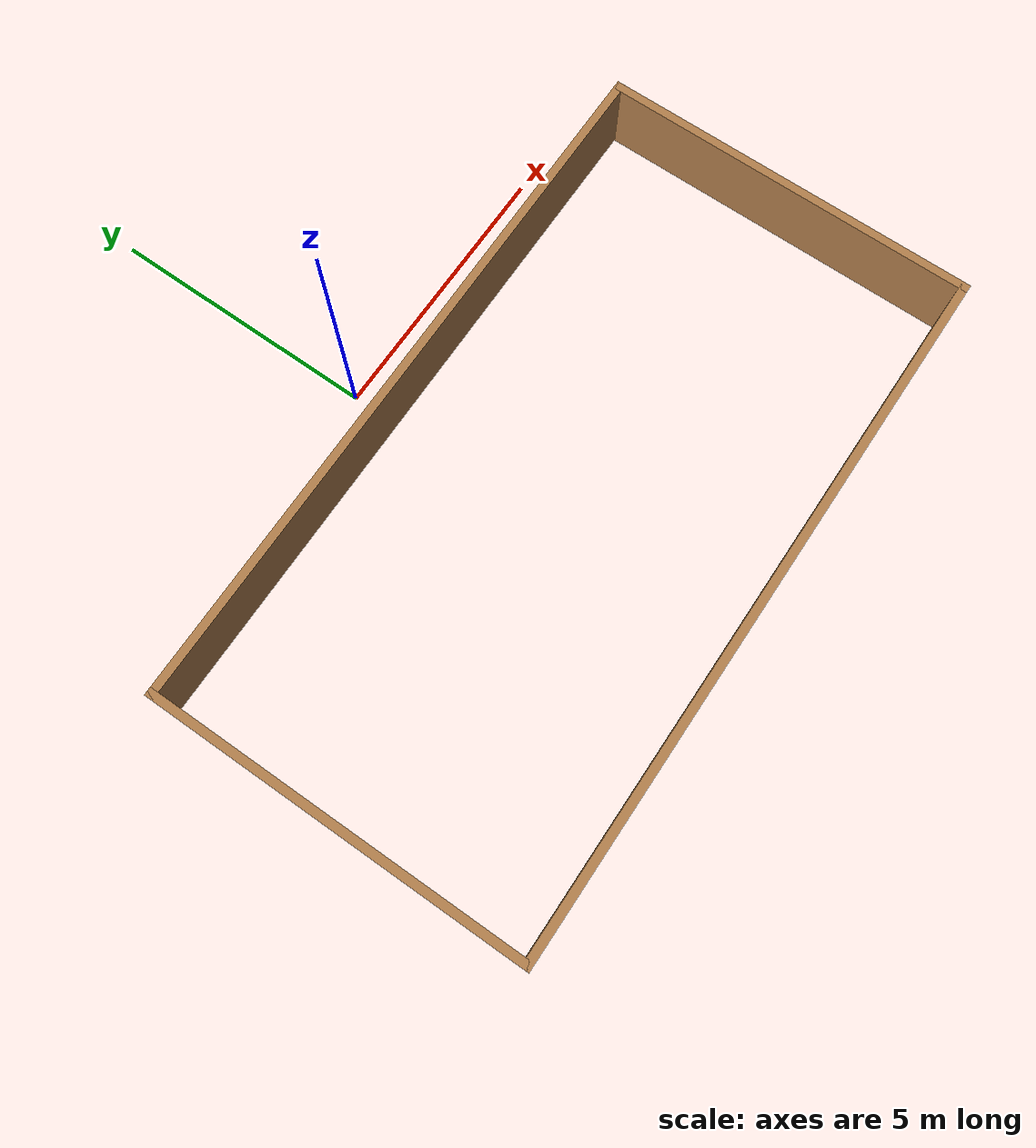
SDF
<?xml version='1.0'?>
<sdf version='1.6'>
  <model name='myspace'>
    <pose frame=''>0.470001 -4.185 0 0 -0 0</pose>
    <link name='Wall_4'>
      <collision name='Wall_4_Collision'>
        <geometry>
          <box>
            <size>6.95007 0.15 1.5</size>
          </box>
        </geometry>
        <pose frame=''>0 0 0.75 0 -0 0</pose>
      </collision>
      <visual name='Wall_4_Visual'>
        <pose frame=''>0 0 0.75 0 -0 0</pose>
        <geometry>
          <box>
            <size>6.95007 0.15 1.5</size>
          </box>
        </geometry>
        <material>
          <script>
            <uri>file://media/materials/scripts/gazebo.material</uri>
            <name>Gazebo/Wood</name>
          </script>
          <ambient>1 1 1 1</ambient>
        </material>
        <meta>
          <layer>0</layer>
        </meta>
      </visual>
      <pose frame=''>-6.41 -0.044999 0 0 -0 1.57668</pose>
    </link>
    <link name='Wall_5'>
      <collision name='Wall_5_Collision'>
        <geometry>
          <box>
            <size>12.9903 0.15 1.5</size>
          </box>
        </geometry>
        <pose frame=''>0 0 0.75 0 -0 0</pose>
      </collision>
      <visual name='Wall_5_Visual'>
        <pose frame=''>0 0 0.75 0 -0 0</pose>
        <geometry>
          <box>
            <size>12.9903 0.15 1.5</size>
          </box>
        </geometry>
        <material>
          <script>
            <uri>file://media/materials/scripts/gazebo.material</uri>
            <name>Gazebo/Wood</name>
          </script>
          <ambient>1 1 1 1</ambient>
        </material>
        <meta>
          <layer>0</layer>
        </meta>
      </visual>
      <pose frame=''>-0.010001 3.4 0 0 -0 0.007009</pose>
    </link>
    <link name='Wall_6'>
      <collision name='Wall_6_Collision'>
        <geometry>
          <box>
            <size>6.95007 0.15 1.5</size>
          </box>
        </geometry>
        <pose frame=''>0 0 0.75 0 -0 0</pose>
      </collision>
      <visual name='Wall_6_Visual'>
        <pose frame=''>0 0 0.75 0 -0 0</pose>
        <geometry>
          <box>
            <size>6.95007 0.15 1.5</size>
          </box>
        </geometry>
        <material>
          <script>
            <uri>file://media/materials/scripts/gazebo.material</uri>
            <name>Gazebo/Wood</name>
          </script>
          <ambient>1 1 1 1</ambient>
        </material>
        <meta>
          <layer>0</layer>
        </meta>
      </visual>
      <pose frame=''>6.42 0.045001 0 0 -0 -1.56785</pose>
    </link>
    <link name='Wall_7'>
      <collision name='Wall_7_Collision'>
        <geometry>
          <box>
            <size>12.9703 0.15 1.5</size>
          </box>
        </geometry>
        <pose frame=''>0 0 0.75 0 -0 0</pose>
      </collision>
      <visual name='Wall_7_Visual'>
        <pose frame=''>0 0 0.75 0 -0 0</pose>
        <geometry>
          <box>
            <size>12.9703 0.15 1.5</size>
          </box>
        </geometry>
        <material>
          <script>
            <uri>file://media/materials/scripts/gazebo.material</uri>
            <name>Gazebo/Wood</name>
          </script>
          <ambient>1 1 1 1</ambient>
        </material>
        <meta>
          <layer>0</layer>
        </meta>
      </visual>
      <pose frame=''>0.019999 -3.4 0 0 -0 -3.13457</pose>
    </link>
    <static>1</static>
  </model>
</sdf>
